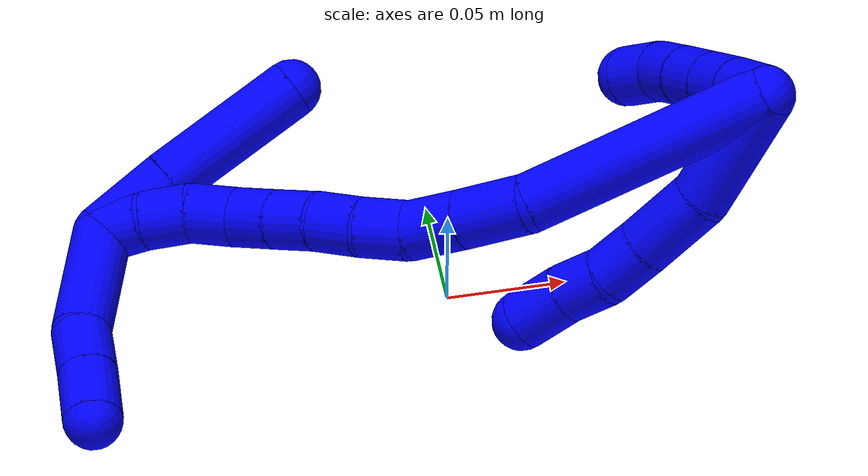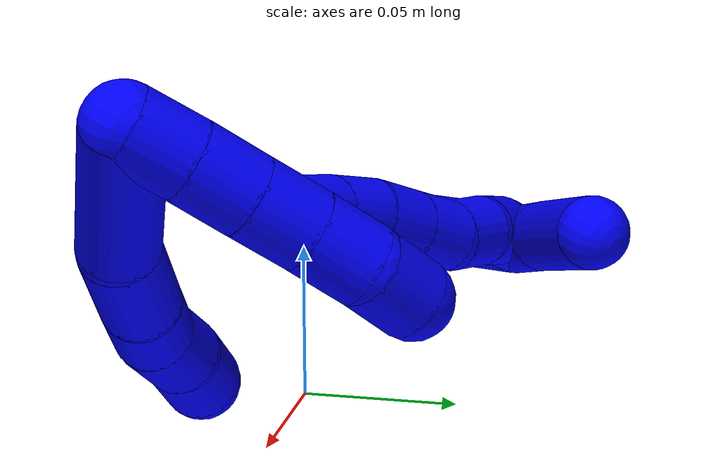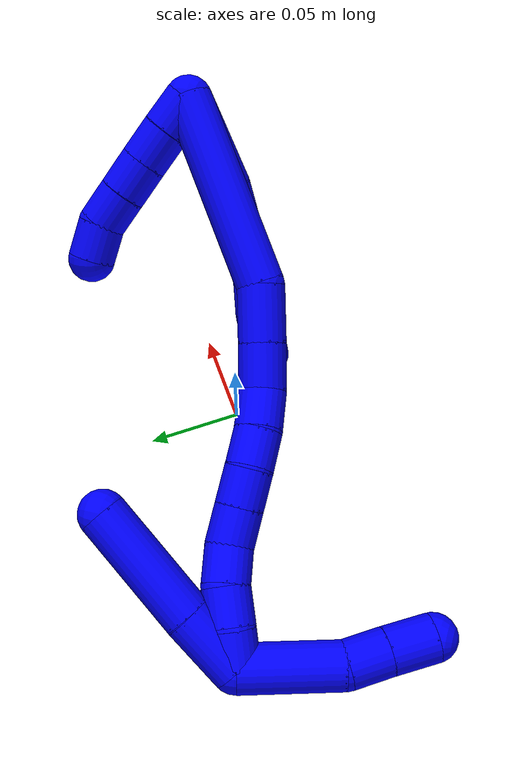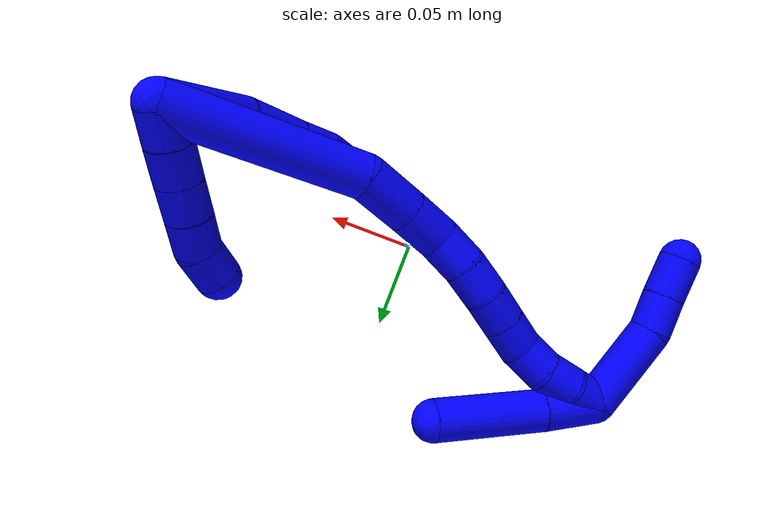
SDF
<sdf version="1.7">
 <world name="default">
  <model name="1">
   <static>0</static>
   <link name="1">
    <collision name="collision-cylinder-e_1_2_8">
     <pose>-0.008136 -0.023651 0.007542 1.26211 -0.316727 -0.232346</pose>
     <geometry><cylinder><radius>0.0125</radius><length>0.052247</length></cylinder></geometry>
     <surface>
      <friction><ode><mu>1.16</mu><mu2>1.16</mu2><slip1>0</slip1><slip2>0</slip2></ode></friction>
      <contact><ode><kp>1e+06</kp><kd>1</kd><max_vel>0</max_vel><min_depth>0.001</min_depth></ode></contact>
     </surface>
    </collision>
    <visual name="visual-cylinder-e_1_2_8">
     <pose>-0.008136 -0.023651 0.007542 1.26211 -0.316727 -0.232346</pose>
     <geometry><cylinder><radius>0.0125</radius><length>0.052247</length></cylinder></geometry>
     <material><ambient>0 0 1 1</ambient></material>
    </visual>
    <collision name="collision-cylinder-e_2_8_9">
     <pose>-0.025521 -0.060261 0.019633 1.23315 -0.592637 -0.426204</pose>
     <geometry><cylinder><radius>0.0125</radius><length>0.033116</length></cylinder></geometry>
     <surface>
      <friction><ode><mu>1.16</mu><mu2>1.16</mu2><slip1>0</slip1><slip2>0</slip2></ode></friction>
      <contact><ode><kp>1e+06</kp><kd>1</kd><max_vel>0</max_vel><min_depth>0.001</min_depth></ode></contact>
     </surface>
    </collision>
    <visual name="visual-cylinder-e_2_8_9">
     <pose>-0.025521 -0.060261 0.019633 1.23315 -0.592637 -0.426204</pose>
     <geometry><cylinder><radius>0.0125</radius><length>0.033116</length></cylinder></geometry>
     <material><ambient>0 0 1 1</ambient></material>
    </visual>
    <collision name="collision-cylinder-e_3_9_10">
     <pose>-0.040948 -0.081101 0.027763 1.14443 -0.619876 -0.40685</pose>
     <geometry><cylinder><radius>0.0125</radius><length>0.02127</length></cylinder></geometry>
     <surface>
      <friction><ode><mu>1.16</mu><mu2>1.16</mu2><slip1>0</slip1><slip2>0</slip2></ode></friction>
      <contact><ode><kp>1e+06</kp><kd>1</kd><max_vel>0</max_vel><min_depth>0.001</min_depth></ode></contact>
     </surface>
    </collision>
    <visual name="visual-cylinder-e_3_9_10">
     <pose>-0.040948 -0.081101 0.027763 1.14443 -0.619876 -0.40685</pose>
     <geometry><cylinder><radius>0.0125</radius><length>0.02127</length></cylinder></geometry>
     <material><ambient>0 0 1 1</ambient></material>
    </visual>
    <collision name="collision-cylinder-e_4_10_11">
     <pose>-0.054807 -0.095396 0.033036 1.31264 -0.858441 -0.677828</pose>
     <geometry><cylinder><radius>0.0125</radius><length>0.020298</length></cylinder></geometry>
     <surface>
      <friction><ode><mu>1.16</mu><mu2>1.16</mu2><slip1>0</slip1><slip2>0</slip2></ode></friction>
      <contact><ode><kp>1e+06</kp><kd>1</kd><max_vel>0</max_vel><min_depth>0.001</min_depth></ode></contact>
     </surface>
    </collision>
    <visual name="visual-cylinder-e_4_10_11">
     <pose>-0.054807 -0.095396 0.033036 1.31264 -0.858441 -0.677828</pose>
     <geometry><cylinder><radius>0.0125</radius><length>0.020298</length></cylinder></geometry>
     <material><ambient>0 0 1 1</ambient></material>
    </visual>
    <collision name="collision-cylinder-e_5_11_6">
     <pose>-0.070186 -0.109712 0.038097 1.16797 -0.730721 -0.495241</pose>
     <geometry><cylinder><radius>0.0125</radius><length>0.023069</length></cylinder></geometry>
     <surface>
      <friction><ode><mu>1.16</mu><mu2>1.16</mu2><slip1>0</slip1><slip2>0</slip2></ode></friction>
      <contact><ode><kp>1e+06</kp><kd>1</kd><max_vel>0</max_vel><min_depth>0.001</min_depth></ode></contact>
     </surface>
    </collision>
    <visual name="visual-cylinder-e_5_11_6">
     <pose>-0.070186 -0.109712 0.038097 1.16797 -0.730721 -0.495241</pose>
     <geometry><cylinder><radius>0.0125</radius><length>0.023069</length></cylinder></geometry>
     <material><ambient>0 0 1 1</ambient></material>
    </visual>
    <collision name="collision-cylinder-e_1_2_12">
     <pose>-0.007572 -0.004029 -0.005141 2.47689 -0.859002 -1.85001</pose>
     <geometry><cylinder><radius>0.0125</radius><length>0.02</length></cylinder></geometry>
     <surface>
      <friction><ode><mu>1.16</mu><mu2>1.16</mu2><slip1>0</slip1><slip2>0</slip2></ode></friction>
      <contact><ode><kp>1e+06</kp><kd>1</kd><max_vel>0</max_vel><min_depth>0.001</min_depth></ode></contact>
     </surface>
    </collision>
    <visual name="visual-cylinder-e_1_2_12">
     <pose>-0.007572 -0.004029 -0.005141 2.47689 -0.859002 -1.85001</pose>
     <geometry><cylinder><radius>0.0125</radius><length>0.02</length></cylinder></geometry>
     <material><ambient>0 0 1 1</ambient></material>
    </visual>
    <collision name="collision-cylinder-e_2_12_13">
     <pose>-0.022588 -0.012391 -0.015364 2.4355 -0.839596 -1.76129</pose>
     <geometry><cylinder><radius>0.0125</radius><length>0.02</length></cylinder></geometry>
     <surface>
      <friction><ode><mu>1.16</mu><mu2>1.16</mu2><slip1>0</slip1><slip2>0</slip2></ode></friction>
      <contact><ode><kp>1e+06</kp><kd>1</kd><max_vel>0</max_vel><min_depth>0.001</min_depth></ode></contact>
     </surface>
    </collision>
    <visual name="visual-cylinder-e_2_12_13">
     <pose>-0.022588 -0.012391 -0.015364 2.4355 -0.839596 -1.76129</pose>
     <geometry><cylinder><radius>0.0125</radius><length>0.02</length></cylinder></geometry>
     <material><ambient>0 0 1 1</ambient></material>
    </visual>
    <collision name="collision-cylinder-e_3_13_14">
     <pose>-0.037583 -0.021031 -0.025386 2.42462 -0.855928 -1.76632</pose>
     <geometry><cylinder><radius>0.0125</radius><length>0.02</length></cylinder></geometry>
     <surface>
      <friction><ode><mu>1.16</mu><mu2>1.16</mu2><slip1>0</slip1><slip2>0</slip2></ode></friction>
      <contact><ode><kp>1e+06</kp><kd>1</kd><max_vel>0</max_vel><min_depth>0.001</min_depth></ode></contact>
     </surface>
    </collision>
    <visual name="visual-cylinder-e_3_13_14">
     <pose>-0.037583 -0.021031 -0.025386 2.42462 -0.855928 -1.76632</pose>
     <geometry><cylinder><radius>0.0125</radius><length>0.02</length></cylinder></geometry>
     <material><ambient>0 0 1 1</ambient></material>
    </visual>
    <collision name="collision-cylinder-e_4_14_15">
     <pose>-0.052514 -0.029818 -0.035376 2.41593 -0.829948 -1.71907</pose>
     <geometry><cylinder><radius>0.0125</radius><length>0.02</length></cylinder></geometry>
     <surface>
      <friction><ode><mu>1.16</mu><mu2>1.16</mu2><slip1>0</slip1><slip2>0</slip2></ode></friction>
      <contact><ode><kp>1e+06</kp><kd>1</kd><max_vel>0</max_vel><min_depth>0.001</min_depth></ode></contact>
     </surface>
    </collision>
    <visual name="visual-cylinder-e_4_14_15">
     <pose>-0.052514 -0.029818 -0.035376 2.41593 -0.829948 -1.71907</pose>
     <geometry><cylinder><radius>0.0125</radius><length>0.02</length></cylinder></geometry>
     <material><ambient>0 0 1 1</ambient></material>
    </visual>
    <collision name="collision-cylinder-e_5_15_5">
     <pose>-0.067924 -0.03987 -0.042532 1.93233 -0.932542 -1.25904</pose>
     <geometry><cylinder><radius>0.0125</radius><length>0.02</length></cylinder></geometry>
     <surface>
      <friction><ode><mu>1.16</mu><mu2>1.16</mu2><slip1>0</slip1><slip2>0</slip2></ode></friction>
      <contact><ode><kp>1e+06</kp><kd>1</kd><max_vel>0</max_vel><min_depth>0.001</min_depth></ode></contact>
     </surface>
    </collision>
    <visual name="visual-cylinder-e_5_15_5">
     <pose>-0.067924 -0.03987 -0.042532 1.93233 -0.932542 -1.25904</pose>
     <geometry><cylinder><radius>0.0125</radius><length>0.02</length></cylinder></geometry>
     <material><ambient>0 0 1 1</ambient></material>
    </visual>
    <collision name="collision-cylinder-e_1_2_16">
     <pose>-0.037888 -0.024866 0.026284 0.757674 -0.808416 -0.337319</pose>
     <geometry><cylinder><radius>0.0125</radius><length>0.104779</length></cylinder></geometry>
     <surface>
      <friction><ode><mu>1.16</mu><mu2>1.16</mu2><slip1>0</slip1><slip2>0</slip2></ode></friction>
      <contact><ode><kp>1e+06</kp><kd>1</kd><max_vel>0</max_vel><min_depth>0.001</min_depth></ode></contact>
     </surface>
    </collision>
    <visual name="visual-cylinder-e_1_2_16">
     <pose>-0.037888 -0.024866 0.026284 0.757674 -0.808416 -0.337319</pose>
     <geometry><cylinder><radius>0.0125</radius><length>0.104779</length></cylinder></geometry>
     <material><ambient>0 0 1 1</ambient></material>
    </visual>
    <collision name="collision-cylinder-e_2_16_17">
     <pose>-0.088572 -0.056948 0.05531 1.20774 -1.02797 -0.742812</pose>
     <geometry><cylinder><radius>0.0125</radius><length>0.02989</length></cylinder></geometry>
     <surface>
      <friction><ode><mu>1.16</mu><mu2>1.16</mu2><slip1>0</slip1><slip2>0</slip2></ode></friction>
      <contact><ode><kp>1e+06</kp><kd>1</kd><max_vel>0</max_vel><min_depth>0.001</min_depth></ode></contact>
     </surface>
    </collision>
    <visual name="visual-cylinder-e_2_16_17">
     <pose>-0.088572 -0.056948 0.05531 1.20774 -1.02797 -0.742812</pose>
     <geometry><cylinder><radius>0.0125</radius><length>0.02989</length></cylinder></geometry>
     <material><ambient>0 0 1 1</ambient></material>
    </visual>
    <collision name="collision-cylinder-e_3_17_18">
     <pose>-0.11191 -0.069867 0.060112 1.22409 -1.04886 -0.771439</pose>
     <geometry><cylinder><radius>0.0125</radius><length>0.024319</length></cylinder></geometry>
     <surface>
      <friction><ode><mu>1.16</mu><mu2>1.16</mu2><slip1>0</slip1><slip2>0</slip2></ode></friction>
      <contact><ode><kp>1e+06</kp><kd>1</kd><max_vel>0</max_vel><min_depth>0.001</min_depth></ode></contact>
     </surface>
    </collision>
    <visual name="visual-cylinder-e_3_17_18">
     <pose>-0.11191 -0.069867 0.060112 1.22409 -1.04886 -0.771439</pose>
     <geometry><cylinder><radius>0.0125</radius><length>0.024319</length></cylinder></geometry>
     <material><ambient>0 0 1 1</ambient></material>
    </visual>
    <collision name="collision-cylinder-e_4_18_19">
     <pose>-0.132611 -0.077598 0.063699 0.925771 -1.32582 -0.743095</pose>
     <geometry><cylinder><radius>0.0125</radius><length>0.020948</length></cylinder></geometry>
     <surface>
      <friction><ode><mu>1.16</mu><mu2>1.16</mu2><slip1>0</slip1><slip2>0</slip2></ode></friction>
      <contact><ode><kp>1e+06</kp><kd>1</kd><max_vel>0</max_vel><min_depth>0.001</min_depth></ode></contact>
     </surface>
    </collision>
    <visual name="visual-cylinder-e_4_18_19">
     <pose>-0.132611 -0.077598 0.063699 0.925771 -1.32582 -0.743095</pose>
     <geometry><cylinder><radius>0.0125</radius><length>0.020948</length></cylinder></geometry>
     <material><ambient>0 0 1 1</ambient></material>
    </visual>
    <collision name="collision-cylinder-e_5_19_20">
     <pose>-0.152545 -0.081866 0.065331 1.52415 -1.34537 -1.30015</pose>
     <geometry><cylinder><radius>0.0125</radius><length>0.020053</length></cylinder></geometry>
     <surface>
      <friction><ode><mu>1.16</mu><mu2>1.16</mu2><slip1>0</slip1><slip2>0</slip2></ode></friction>
      <contact><ode><kp>1e+06</kp><kd>1</kd><max_vel>0</max_vel><min_depth>0.001</min_depth></ode></contact>
     </surface>
    </collision>
    <visual name="visual-cylinder-e_5_19_20">
     <pose>-0.152545 -0.081866 0.065331 1.52415 -1.34537 -1.30015</pose>
     <geometry><cylinder><radius>0.0125</radius><length>0.020053</length></cylinder></geometry>
     <material><ambient>0 0 1 1</ambient></material>
    </visual>
    <collision name="collision-cylinder-e_6_20_21">
     <pose>-0.17168 -0.087591 0.064895 1.72449 -1.21043 -1.35829</pose>
     <geometry><cylinder><radius>0.0125</radius><length>0.02001</length></cylinder></geometry>
     <surface>
      <friction><ode><mu>1.16</mu><mu2>1.16</mu2><slip1>0</slip1><slip2>0</slip2></ode></friction>
      <contact><ode><kp>1e+06</kp><kd>1</kd><max_vel>0</max_vel><min_depth>0.001</min_depth></ode></contact>
     </surface>
    </collision>
    <visual name="visual-cylinder-e_6_20_21">
     <pose>-0.17168 -0.087591 0.064895 1.72449 -1.21043 -1.35829</pose>
     <geometry><cylinder><radius>0.0125</radius><length>0.02001</length></cylinder></geometry>
     <material><ambient>0 0 1 1</ambient></material>
    </visual>
    <collision name="collision-cylinder-e_7_21_22">
     <pose>-0.190441 -0.094461 0.063881 1.7101 -1.22212 -1.35625</pose>
     <geometry><cylinder><radius>0.0125</radius><length>0.020002</length></cylinder></geometry>
     <surface>
      <friction><ode><mu>1.16</mu><mu2>1.16</mu2><slip1>0</slip1><slip2>0</slip2></ode></friction>
      <contact><ode><kp>1e+06</kp><kd>1</kd><max_vel>0</max_vel><min_depth>0.001</min_depth></ode></contact>
     </surface>
    </collision>
    <visual name="visual-cylinder-e_7_21_22">
     <pose>-0.190441 -0.094461 0.063881 1.7101 -1.22212 -1.35625</pose>
     <geometry><cylinder><radius>0.0125</radius><length>0.020002</length></cylinder></geometry>
     <material><ambient>0 0 1 1</ambient></material>
    </visual>
    <collision name="collision-cylinder-e_8_22_23">
     <pose>-0.209551 -0.099327 0.065278 0.669638 -1.32971 -0.532526</pose>
     <geometry><cylinder><radius>0.0125</radius><length>0.02</length></cylinder></geometry>
     <surface>
      <friction><ode><mu>1.16</mu><mu2>1.16</mu2><slip1>0</slip1><slip2>0</slip2></ode></friction>
      <contact><ode><kp>1e+06</kp><kd>1</kd><max_vel>0</max_vel><min_depth>0.001</min_depth></ode></contact>
     </surface>
    </collision>
    <visual name="visual-cylinder-e_8_22_23">
     <pose>-0.209551 -0.099327 0.065278 0.669638 -1.32971 -0.532526</pose>
     <geometry><cylinder><radius>0.0125</radius><length>0.02</length></cylinder></geometry>
     <material><ambient>0 0 1 1</ambient></material>
    </visual>
    <collision name="collision-cylinder-e_9_23_24">
     <pose>-0.228083 -0.103973 0.07064 0.736432 -1.08028 -0.454683</pose>
     <geometry><cylinder><radius>0.0125</radius><length>0.02</length></cylinder></geometry>
     <surface>
      <friction><ode><mu>1.16</mu><mu2>1.16</mu2><slip1>0</slip1><slip2>0</slip2></ode></friction>
      <contact><ode><kp>1e+06</kp><kd>1</kd><max_vel>0</max_vel><min_depth>0.001</min_depth></ode></contact>
     </surface>
    </collision>
    <visual name="visual-cylinder-e_9_23_24">
     <pose>-0.228083 -0.103973 0.07064 0.736432 -1.08028 -0.454683</pose>
     <geometry><cylinder><radius>0.0125</radius><length>0.02</length></cylinder></geometry>
     <material><ambient>0 0 1 1</ambient></material>
    </visual>
    <collision name="collision-cylinder-e_10_24_1">
     <pose>-0.245258 -0.111835 0.076984 1.02494 -0.988875 -0.588966</pose>
     <geometry><cylinder><radius>0.0125</radius><length>0.02</length></cylinder></geometry>
     <surface>
      <friction><ode><mu>1.16</mu><mu2>1.16</mu2><slip1>0</slip1><slip2>0</slip2></ode></friction>
      <contact><ode><kp>1e+06</kp><kd>1</kd><max_vel>0</max_vel><min_depth>0.001</min_depth></ode></contact>
     </surface>
    </collision>
    <visual name="visual-cylinder-e_10_24_1">
     <pose>-0.245258 -0.111835 0.076984 1.02494 -0.988875 -0.588966</pose>
     <geometry><cylinder><radius>0.0125</radius><length>0.02</length></cylinder></geometry>
     <material><ambient>0 0 1 1</ambient></material>
    </visual>
    <collision name="collision-cylinder-e_1_1_25">
     <pose>-0.24491 -0.122779 0.104367 0.249347 0.331123 0.041875</pose>
     <geometry><cylinder><radius>0.0125</radius><length>0.053534</length></cylinder></geometry>
     <surface>
      <friction><ode><mu>1.16</mu><mu2>1.16</mu2><slip1>0</slip1><slip2>0</slip2></ode></friction>
      <contact><ode><kp>1e+06</kp><kd>1</kd><max_vel>0</max_vel><min_depth>0.001</min_depth></ode></contact>
     </surface>
    </collision>
    <visual name="visual-cylinder-e_1_1_25">
     <pose>-0.24491 -0.122779 0.104367 0.249347 0.331123 0.041875</pose>
     <geometry><cylinder><radius>0.0125</radius><length>0.053534</length></cylinder></geometry>
     <material><ambient>0 0 1 1</ambient></material>
    </visual>
    <collision name="collision-cylinder-e_2_25_26">
     <pose>-0.229835 -0.131386 0.137578 0.265572 0.616329 0.084982</pose>
     <geometry><cylinder><radius>0.0125</radius><length>0.022049</length></cylinder></geometry>
     <surface>
      <friction><ode><mu>1.16</mu><mu2>1.16</mu2><slip1>0</slip1><slip2>0</slip2></ode></friction>
      <contact><ode><kp>1e+06</kp><kd>1</kd><max_vel>0</max_vel><min_depth>0.001</min_depth></ode></contact>
     </surface>
    </collision>
    <visual name="visual-cylinder-e_2_25_26">
     <pose>-0.229835 -0.131386 0.137578 0.265572 0.616329 0.084982</pose>
     <geometry><cylinder><radius>0.0125</radius><length>0.022049</length></cylinder></geometry>
     <material><ambient>0 0 1 1</ambient></material>
    </visual>
    <collision name="collision-cylinder-e_3_26_4">
     <pose>-0.216747 -0.1362 0.156155 0.242876 0.582445 0.073128</pose>
     <geometry><cylinder><radius>0.0125</radius><length>0.024417</length></cylinder></geometry>
     <surface>
      <friction><ode><mu>1.16</mu><mu2>1.16</mu2><slip1>0</slip1><slip2>0</slip2></ode></friction>
      <contact><ode><kp>1e+06</kp><kd>1</kd><max_vel>0</max_vel><min_depth>0.001</min_depth></ode></contact>
     </surface>
    </collision>
    <visual name="visual-cylinder-e_3_26_4">
     <pose>-0.216747 -0.1362 0.156155 0.242876 0.582445 0.073128</pose>
     <geometry><cylinder><radius>0.0125</radius><length>0.024417</length></cylinder></geometry>
     <material><ambient>0 0 1 1</ambient></material>
    </visual>
    <collision name="collision-cylinder-e_1_1_27">
     <pose>-0.245918 -0.108276 0.066611 -2.58355 0.458382 -1.36678</pose>
     <geometry><cylinder><radius>0.0125</radius><length>0.034773</length></cylinder></geometry>
     <surface>
      <friction><ode><mu>1.16</mu><mu2>1.16</mu2><slip1>0</slip1><slip2>0</slip2></ode></friction>
      <contact><ode><kp>1e+06</kp><kd>1</kd><max_vel>0</max_vel><min_depth>0.001</min_depth></ode></contact>
     </surface>
    </collision>
    <visual name="visual-cylinder-e_1_1_27">
     <pose>-0.245918 -0.108276 0.066611 -2.58355 0.458382 -1.36678</pose>
     <geometry><cylinder><radius>0.0125</radius><length>0.034773</length></cylinder></geometry>
     <material><ambient>0 0 1 1</ambient></material>
    </visual>
    <collision name="collision-cylinder-e_2_27_3">
     <pose>-0.222243 -0.085251 0.029092 -2.59536 0.51212 -1.50325</pose>
     <geometry><cylinder><radius>0.0125</radius><length>0.065227</length></cylinder></geometry>
     <surface>
      <friction><ode><mu>1.16</mu><mu2>1.16</mu2><slip1>0</slip1><slip2>0</slip2></ode></friction>
      <contact><ode><kp>1e+06</kp><kd>1</kd><max_vel>0</max_vel><min_depth>0.001</min_depth></ode></contact>
     </surface>
    </collision>
    <visual name="visual-cylinder-e_2_27_3">
     <pose>-0.222243 -0.085251 0.029092 -2.59536 0.51212 -1.50325</pose>
     <geometry><cylinder><radius>0.0125</radius><length>0.065227</length></cylinder></geometry>
     <material><ambient>0 0 1 1</ambient></material>
    </visual>
    <collision name="collision-sphere-3">
     <pose>-0.206262 -0.070483 0.004799 0 -0 0</pose>
     <geometry><sphere><radius>0.0125</radius></sphere></geometry>
     <surface>
      <friction><ode><mu>1.16</mu><mu2>1.16</mu2><slip1>0</slip1><slip2>0</slip2></ode></friction>
      <contact><ode><kp>1e+06</kp><kd>1</kd><max_vel>0</max_vel><min_depth>0.001</min_depth></ode></contact>
     </surface>
    </collision>
    <visual name="visual-sphere-3">
     <pose>-0.206262 -0.070483 0.004799 0 -0 0</pose>
     <geometry><sphere><radius>0.0125</radius></sphere></geometry>
     <material><ambient>0 0 1 1</ambient></material>
    </visual>
    <collision name="collision-sphere-27">
     <pose>-0.238225 -0.10002 0.053384 0 -0 0</pose>
     <geometry><sphere><radius>0.0125</radius></sphere></geometry>
     <surface>
      <friction><ode><mu>1.16</mu><mu2>1.16</mu2><slip1>0</slip1><slip2>0</slip2></ode></friction>
      <contact><ode><kp>1e+06</kp><kd>1</kd><max_vel>0</max_vel><min_depth>0.001</min_depth></ode></contact>
     </surface>
    </collision>
    <visual name="visual-sphere-27">
     <pose>-0.238225 -0.10002 0.053384 0 -0 0</pose>
     <geometry><sphere><radius>0.0125</radius></sphere></geometry>
     <material><ambient>0 0 1 1</ambient></material>
    </visual>
    <collision name="collision-sphere-4">
     <pose>-0.210031 -0.138652 0.166051 0 -0 0</pose>
     <geometry><sphere><radius>0.0125</radius></sphere></geometry>
     <surface>
      <friction><ode><mu>1.16</mu><mu2>1.16</mu2><slip1>0</slip1><slip2>0</slip2></ode></friction>
      <contact><ode><kp>1e+06</kp><kd>1</kd><max_vel>0</max_vel><min_depth>0.001</min_depth></ode></contact>
     </surface>
    </collision>
    <visual name="visual-sphere-4">
     <pose>-0.210031 -0.138652 0.166051 0 -0 0</pose>
     <geometry><sphere><radius>0.0125</radius></sphere></geometry>
     <material><ambient>0 0 1 1</ambient></material>
    </visual>
    <collision name="collision-sphere-26">
     <pose>-0.223463 -0.133748 0.146259 0 -0 0</pose>
     <geometry><sphere><radius>0.0125</radius></sphere></geometry>
     <surface>
      <friction><ode><mu>1.16</mu><mu2>1.16</mu2><slip1>0</slip1><slip2>0</slip2></ode></friction>
      <contact><ode><kp>1e+06</kp><kd>1</kd><max_vel>0</max_vel><min_depth>0.001</min_depth></ode></contact>
     </surface>
    </collision>
    <visual name="visual-sphere-26">
     <pose>-0.223463 -0.133748 0.146259 0 -0 0</pose>
     <geometry><sphere><radius>0.0125</radius></sphere></geometry>
     <material><ambient>0 0 1 1</ambient></material>
    </visual>
    <collision name="collision-sphere-25">
     <pose>-0.236208 -0.129025 0.128897 0 -0 0</pose>
     <geometry><sphere><radius>0.0125</radius></sphere></geometry>
     <surface>
      <friction><ode><mu>1.16</mu><mu2>1.16</mu2><slip1>0</slip1><slip2>0</slip2></ode></friction>
      <contact><ode><kp>1e+06</kp><kd>1</kd><max_vel>0</max_vel><min_depth>0.001</min_depth></ode></contact>
     </surface>
    </collision>
    <visual name="visual-sphere-25">
     <pose>-0.236208 -0.129025 0.128897 0 -0 0</pose>
     <geometry><sphere><radius>0.0125</radius></sphere></geometry>
     <material><ambient>0 0 1 1</ambient></material>
    </visual>
    <collision name="collision-sphere-1">
     <pose>-0.253612 -0.116532 0.079837 0 -0 0</pose>
     <geometry><sphere><radius>0.0125</radius></sphere></geometry>
     <surface>
      <friction><ode><mu>1.16</mu><mu2>1.16</mu2><slip1>0</slip1><slip2>0</slip2></ode></friction>
      <contact><ode><kp>1e+06</kp><kd>1</kd><max_vel>0</max_vel><min_depth>0.001</min_depth></ode></contact>
     </surface>
    </collision>
    <visual name="visual-sphere-1">
     <pose>-0.253612 -0.116532 0.079837 0 -0 0</pose>
     <geometry><sphere><radius>0.0125</radius></sphere></geometry>
     <material><ambient>0 0 1 1</ambient></material>
    </visual>
    <collision name="collision-sphere-24">
     <pose>-0.236904 -0.107137 0.07413 0 -0 0</pose>
     <geometry><sphere><radius>0.0125</radius></sphere></geometry>
     <surface>
      <friction><ode><mu>1.16</mu><mu2>1.16</mu2><slip1>0</slip1><slip2>0</slip2></ode></friction>
      <contact><ode><kp>1e+06</kp><kd>1</kd><max_vel>0</max_vel><min_depth>0.001</min_depth></ode></contact>
     </surface>
    </collision>
    <visual name="visual-sphere-24">
     <pose>-0.236904 -0.107137 0.07413 0 -0 0</pose>
     <geometry><sphere><radius>0.0125</radius></sphere></geometry>
     <material><ambient>0 0 1 1</ambient></material>
    </visual>
    <collision name="collision-sphere-23">
     <pose>-0.219262 -0.100809 0.06715 0 -0 0</pose>
     <geometry><sphere><radius>0.0125</radius></sphere></geometry>
     <surface>
      <friction><ode><mu>1.16</mu><mu2>1.16</mu2><slip1>0</slip1><slip2>0</slip2></ode></friction>
      <contact><ode><kp>1e+06</kp><kd>1</kd><max_vel>0</max_vel><min_depth>0.001</min_depth></ode></contact>
     </surface>
    </collision>
    <visual name="visual-sphere-23">
     <pose>-0.219262 -0.100809 0.06715 0 -0 0</pose>
     <geometry><sphere><radius>0.0125</radius></sphere></geometry>
     <material><ambient>0 0 1 1</ambient></material>
    </visual>
    <collision name="collision-sphere-22">
     <pose>-0.19984 -0.097845 0.063406 0 -0 0</pose>
     <geometry><sphere><radius>0.0125</radius></sphere></geometry>
     <surface>
      <friction><ode><mu>1.16</mu><mu2>1.16</mu2><slip1>0</slip1><slip2>0</slip2></ode></friction>
      <contact><ode><kp>1e+06</kp><kd>1</kd><max_vel>0</max_vel><min_depth>0.001</min_depth></ode></contact>
     </surface>
    </collision>
    <visual name="visual-sphere-22">
     <pose>-0.19984 -0.097845 0.063406 0 -0 0</pose>
     <geometry><sphere><radius>0.0125</radius></sphere></geometry>
     <material><ambient>0 0 1 1</ambient></material>
    </visual>
    <collision name="collision-sphere-21">
     <pose>-0.181042 -0.091078 0.064355 0 -0 0</pose>
     <geometry><sphere><radius>0.0125</radius></sphere></geometry>
     <surface>
      <friction><ode><mu>1.16</mu><mu2>1.16</mu2><slip1>0</slip1><slip2>0</slip2></ode></friction>
      <contact><ode><kp>1e+06</kp><kd>1</kd><max_vel>0</max_vel><min_depth>0.001</min_depth></ode></contact>
     </surface>
    </collision>
    <visual name="visual-sphere-21">
     <pose>-0.181042 -0.091078 0.064355 0 -0 0</pose>
     <geometry><sphere><radius>0.0125</radius></sphere></geometry>
     <material><ambient>0 0 1 1</ambient></material>
    </visual>
    <collision name="collision-sphere-6">
     <pose>-0.077885 -0.117614 0.041464 0 -0 0</pose>
     <geometry><sphere><radius>0.0125</radius></sphere></geometry>
     <surface>
      <friction><ode><mu>1.16</mu><mu2>1.16</mu2><slip1>0</slip1><slip2>0</slip2></ode></friction>
      <contact><ode><kp>1e+06</kp><kd>1</kd><max_vel>0</max_vel><min_depth>0.001</min_depth></ode></contact>
     </surface>
    </collision>
    <visual name="visual-sphere-6">
     <pose>-0.077885 -0.117614 0.041464 0 -0 0</pose>
     <geometry><sphere><radius>0.0125</radius></sphere></geometry>
     <material><ambient>0 0 1 1</ambient></material>
    </visual>
    <collision name="collision-sphere-11">
     <pose>-0.062488 -0.101809 0.03473 0 -0 0</pose>
     <geometry><sphere><radius>0.0125</radius></sphere></geometry>
     <surface>
      <friction><ode><mu>1.16</mu><mu2>1.16</mu2><slip1>0</slip1><slip2>0</slip2></ode></friction>
      <contact><ode><kp>1e+06</kp><kd>1</kd><max_vel>0</max_vel><min_depth>0.001</min_depth></ode></contact>
     </surface>
    </collision>
    <visual name="visual-sphere-11">
     <pose>-0.062488 -0.101809 0.03473 0 -0 0</pose>
     <geometry><sphere><radius>0.0125</radius></sphere></geometry>
     <material><ambient>0 0 1 1</ambient></material>
    </visual>
    <collision name="collision-sphere-10">
     <pose>-0.047126 -0.088982 0.031342 0 -0 0</pose>
     <geometry><sphere><radius>0.0125</radius></sphere></geometry>
     <surface>
      <friction><ode><mu>1.16</mu><mu2>1.16</mu2><slip1>0</slip1><slip2>0</slip2></ode></friction>
      <contact><ode><kp>1e+06</kp><kd>1</kd><max_vel>0</max_vel><min_depth>0.001</min_depth></ode></contact>
     </surface>
    </collision>
    <visual name="visual-sphere-10">
     <pose>-0.047126 -0.088982 0.031342 0 -0 0</pose>
     <geometry><sphere><radius>0.0125</radius></sphere></geometry>
     <material><ambient>0 0 1 1</ambient></material>
    </visual>
    <collision name="collision-sphere-9">
     <pose>-0.03477 -0.073219 0.024183 0 -0 0</pose>
     <geometry><sphere><radius>0.0125</radius></sphere></geometry>
     <surface>
      <friction><ode><mu>1.16</mu><mu2>1.16</mu2><slip1>0</slip1><slip2>0</slip2></ode></friction>
      <contact><ode><kp>1e+06</kp><kd>1</kd><max_vel>0</max_vel><min_depth>0.001</min_depth></ode></contact>
     </surface>
    </collision>
    <visual name="visual-sphere-9">
     <pose>-0.03477 -0.073219 0.024183 0 -0 0</pose>
     <geometry><sphere><radius>0.0125</radius></sphere></geometry>
     <material><ambient>0 0 1 1</ambient></material>
    </visual>
    <collision name="collision-sphere-2">
     <geometry><sphere><radius>0.0125</radius></sphere></geometry>
     <surface>
      <friction><ode><mu>1.16</mu><mu2>1.16</mu2><slip1>0</slip1><slip2>0</slip2></ode></friction>
      <contact><ode><kp>1e+06</kp><kd>1</kd><max_vel>0</max_vel><min_depth>0.001</min_depth></ode></contact>
     </surface>
    </collision>
    <visual name="visual-sphere-2">
     <geometry><sphere><radius>0.0125</radius></sphere></geometry>
     <material><ambient>0 0 1 1</ambient></material>
    </visual>
    <collision name="collision-sphere-19">
     <pose>-0.142772 -0.079628 0.065226 0 -0 0</pose>
     <geometry><sphere><radius>0.0125</radius></sphere></geometry>
     <surface>
      <friction><ode><mu>1.16</mu><mu2>1.16</mu2><slip1>0</slip1><slip2>0</slip2></ode></friction>
      <contact><ode><kp>1e+06</kp><kd>1</kd><max_vel>0</max_vel><min_depth>0.001</min_depth></ode></contact>
     </surface>
    </collision>
    <visual name="visual-sphere-19">
     <pose>-0.142772 -0.079628 0.065226 0 -0 0</pose>
     <geometry><sphere><radius>0.0125</radius></sphere></geometry>
     <material><ambient>0 0 1 1</ambient></material>
    </visual>
    <collision name="collision-sphere-8">
     <pose>-0.016273 -0.047302 0.015083 0 -0 0</pose>
     <geometry><sphere><radius>0.0125</radius></sphere></geometry>
     <surface>
      <friction><ode><mu>1.16</mu><mu2>1.16</mu2><slip1>0</slip1><slip2>0</slip2></ode></friction>
      <contact><ode><kp>1e+06</kp><kd>1</kd><max_vel>0</max_vel><min_depth>0.001</min_depth></ode></contact>
     </surface>
    </collision>
    <visual name="visual-sphere-8">
     <pose>-0.016273 -0.047302 0.015083 0 -0 0</pose>
     <geometry><sphere><radius>0.0125</radius></sphere></geometry>
     <material><ambient>0 0 1 1</ambient></material>
    </visual>
    <collision name="collision-sphere-12">
     <pose>-0.015144 -0.008058 -0.010283 0 -0 0</pose>
     <geometry><sphere><radius>0.0125</radius></sphere></geometry>
     <surface>
      <friction><ode><mu>1.16</mu><mu2>1.16</mu2><slip1>0</slip1><slip2>0</slip2></ode></friction>
      <contact><ode><kp>1e+06</kp><kd>1</kd><max_vel>0</max_vel><min_depth>0.001</min_depth></ode></contact>
     </surface>
    </collision>
    <visual name="visual-sphere-12">
     <pose>-0.015144 -0.008058 -0.010283 0 -0 0</pose>
     <geometry><sphere><radius>0.0125</radius></sphere></geometry>
     <material><ambient>0 0 1 1</ambient></material>
    </visual>
    <collision name="collision-sphere-13">
     <pose>-0.030031 -0.016724 -0.020445 0 -0 0</pose>
     <geometry><sphere><radius>0.0125</radius></sphere></geometry>
     <surface>
      <friction><ode><mu>1.16</mu><mu2>1.16</mu2><slip1>0</slip1><slip2>0</slip2></ode></friction>
      <contact><ode><kp>1e+06</kp><kd>1</kd><max_vel>0</max_vel><min_depth>0.001</min_depth></ode></contact>
     </surface>
    </collision>
    <visual name="visual-sphere-13">
     <pose>-0.030031 -0.016724 -0.020445 0 -0 0</pose>
     <geometry><sphere><radius>0.0125</radius></sphere></geometry>
     <material><ambient>0 0 1 1</ambient></material>
    </visual>
    <collision name="collision-sphere-14">
     <pose>-0.045135 -0.025339 -0.030327 0 -0 0</pose>
     <geometry><sphere><radius>0.0125</radius></sphere></geometry>
     <surface>
      <friction><ode><mu>1.16</mu><mu2>1.16</mu2><slip1>0</slip1><slip2>0</slip2></ode></friction>
      <contact><ode><kp>1e+06</kp><kd>1</kd><max_vel>0</max_vel><min_depth>0.001</min_depth></ode></contact>
     </surface>
    </collision>
    <visual name="visual-sphere-14">
     <pose>-0.045135 -0.025339 -0.030327 0 -0 0</pose>
     <geometry><sphere><radius>0.0125</radius></sphere></geometry>
     <material><ambient>0 0 1 1</ambient></material>
    </visual>
    <collision name="collision-sphere-15">
     <pose>-0.059893 -0.034297 -0.040425 0 -0 0</pose>
     <geometry><sphere><radius>0.0125</radius></sphere></geometry>
     <surface>
      <friction><ode><mu>1.16</mu><mu2>1.16</mu2><slip1>0</slip1><slip2>0</slip2></ode></friction>
      <contact><ode><kp>1e+06</kp><kd>1</kd><max_vel>0</max_vel><min_depth>0.001</min_depth></ode></contact>
     </surface>
    </collision>
    <visual name="visual-sphere-15">
     <pose>-0.059893 -0.034297 -0.040425 0 -0 0</pose>
     <geometry><sphere><radius>0.0125</radius></sphere></geometry>
     <material><ambient>0 0 1 1</ambient></material>
    </visual>
    <collision name="collision-sphere-5">
     <pose>-0.075956 -0.045442 -0.044639 0 -0 0</pose>
     <geometry><sphere><radius>0.0125</radius></sphere></geometry>
     <surface>
      <friction><ode><mu>1.16</mu><mu2>1.16</mu2><slip1>0</slip1><slip2>0</slip2></ode></friction>
      <contact><ode><kp>1e+06</kp><kd>1</kd><max_vel>0</max_vel><min_depth>0.001</min_depth></ode></contact>
     </surface>
    </collision>
    <visual name="visual-sphere-5">
     <pose>-0.075956 -0.045442 -0.044639 0 -0 0</pose>
     <geometry><sphere><radius>0.0125</radius></sphere></geometry>
     <material><ambient>0 0 1 1</ambient></material>
    </visual>
    <collision name="collision-sphere-16">
     <pose>-0.075776 -0.049732 0.052569 0 -0 0</pose>
     <geometry><sphere><radius>0.0125</radius></sphere></geometry>
     <surface>
      <friction><ode><mu>1.16</mu><mu2>1.16</mu2><slip1>0</slip1><slip2>0</slip2></ode></friction>
      <contact><ode><kp>1e+06</kp><kd>1</kd><max_vel>0</max_vel><min_depth>0.001</min_depth></ode></contact>
     </surface>
    </collision>
    <visual name="visual-sphere-16">
     <pose>-0.075776 -0.049732 0.052569 0 -0 0</pose>
     <geometry><sphere><radius>0.0125</radius></sphere></geometry>
     <material><ambient>0 0 1 1</ambient></material>
    </visual>
    <collision name="collision-sphere-17">
     <pose>-0.101369 -0.064165 0.058052 0 -0 0</pose>
     <geometry><sphere><radius>0.0125</radius></sphere></geometry>
     <surface>
      <friction><ode><mu>1.16</mu><mu2>1.16</mu2><slip1>0</slip1><slip2>0</slip2></ode></friction>
      <contact><ode><kp>1e+06</kp><kd>1</kd><max_vel>0</max_vel><min_depth>0.001</min_depth></ode></contact>
     </surface>
    </collision>
    <visual name="visual-sphere-17">
     <pose>-0.101369 -0.064165 0.058052 0 -0 0</pose>
     <geometry><sphere><radius>0.0125</radius></sphere></geometry>
     <material><ambient>0 0 1 1</ambient></material>
    </visual>
    <collision name="collision-sphere-18">
     <pose>-0.12245 -0.075568 0.062172 0 -0 0</pose>
     <geometry><sphere><radius>0.0125</radius></sphere></geometry>
     <surface>
      <friction><ode><mu>1.16</mu><mu2>1.16</mu2><slip1>0</slip1><slip2>0</slip2></ode></friction>
      <contact><ode><kp>1e+06</kp><kd>1</kd><max_vel>0</max_vel><min_depth>0.001</min_depth></ode></contact>
     </surface>
    </collision>
    <visual name="visual-sphere-18">
     <pose>-0.12245 -0.075568 0.062172 0 -0 0</pose>
     <geometry><sphere><radius>0.0125</radius></sphere></geometry>
     <material><ambient>0 0 1 1</ambient></material>
    </visual>
    <collision name="collision-sphere-20">
     <pose>-0.162318 -0.084105 0.065435 0 -0 0</pose>
     <geometry><sphere><radius>0.0125</radius></sphere></geometry>
     <surface>
      <friction><ode><mu>1.16</mu><mu2>1.16</mu2><slip1>0</slip1><slip2>0</slip2></ode></friction>
      <contact><ode><kp>1e+06</kp><kd>1</kd><max_vel>0</max_vel><min_depth>0.001</min_depth></ode></contact>
     </surface>
    </collision>
    <visual name="visual-sphere-20">
     <pose>-0.162318 -0.084105 0.065435 0 -0 0</pose>
     <geometry><sphere><radius>0.0125</radius></sphere></geometry>
     <material><ambient>0 0 1 1</ambient></material>
    </visual>
    <inertial>
     <pose>-0.121644 -0.070541 0.043604 0 -0 0</pose>
     <mass>0.75</mass>
     <inertia><ixx>1.9e-05</ixx><ixy>0</ixy><ixz>0</ixz><iyy>5.4e-05</iyy><iyz>0</iyz><izz>0.000153</izz></inertia>
    </inertial>
   </link>
   <pose>0.125401 -0.018278 0.119746 1.35064 -0.031935 -0.635624</pose>
  </model>
 </world>
</sdf>
